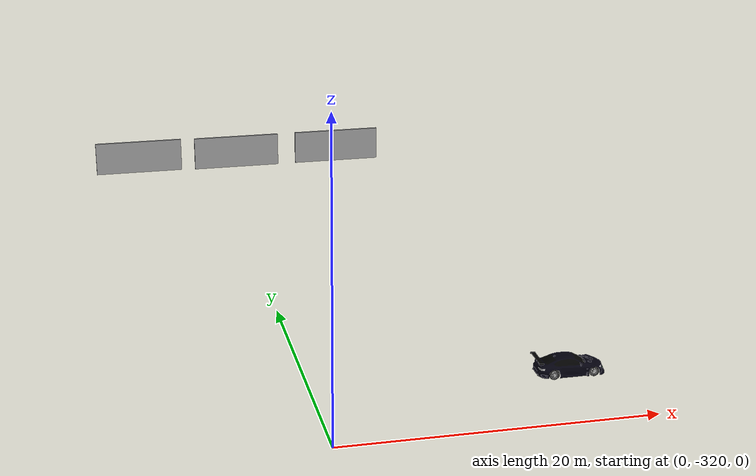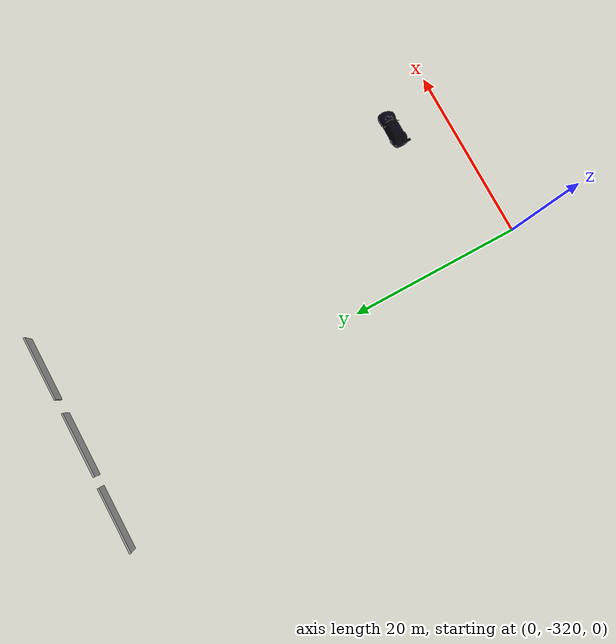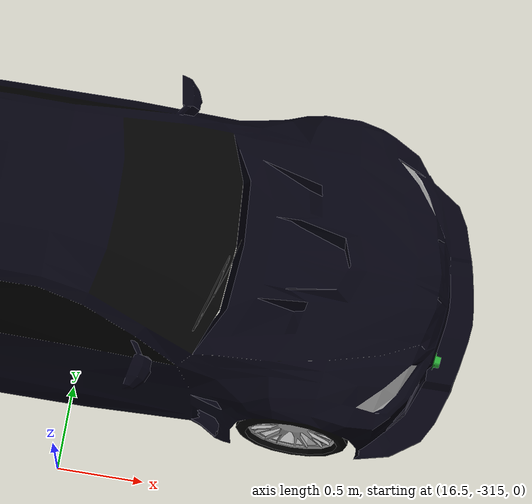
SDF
<sdf version="1.6">
 <world name="default">
  <model name="grey_wall_1">
   <static>1</static>
   <link name="link">
    <pose>0 0 1.4 0 -0 0</pose>
    <collision name="collision"><geometry><box><size>7.5 0.2 2.8</size></box></geometry></collision>
    <visual name="visual">
     <cast_shadows>0</cast_shadows>
     <geometry><box><size>7.5 0.2 2.8</size></box></geometry>
     <material>
      <script>
       <uri>model://grey_wall/materials/scripts</uri>
       <uri>model://grey_wall/materials/textures</uri>
       <name>vrc/grey_wall</name>
      </script>
     </material>
    </visual>
   </link>
   <pose>-6.96815 -267.034 0 0 -0 0</pose>
  </model>
  <model name="grey_wall_2">
   <static>1</static>
   <link name="link">
    <pose>0 0 1.4 0 -0 0</pose>
    <collision name="collision"><geometry><box><size>7.5 0.2 2.8</size></box></geometry></collision>
    <visual name="visual">
     <cast_shadows>0</cast_shadows>
     <geometry><box><size>7.5 0.2 2.8</size></box></geometry>
     <material>
      <script>
       <uri>model://grey_wall/materials/scripts</uri>
       <uri>model://grey_wall/materials/textures</uri>
       <name>vrc/grey_wall</name>
      </script>
     </material>
    </visual>
   </link>
   <pose>1.72789 -267.196 0 0 -0 0</pose>
  </model>
  <model name="grey_wall_3">
   <static>1</static>
   <link name="link">
    <pose>0 0 1.4 0 -0 0</pose>
    <collision name="collision"><geometry><box><size>7.5 0.2 2.8</size></box></geometry></collision>
    <visual name="visual">
     <cast_shadows>0</cast_shadows>
     <geometry><box><size>7.5 0.2 2.8</size></box></geometry>
     <material>
      <script>
       <uri>model://grey_wall/materials/scripts</uri>
       <uri>model://grey_wall/materials/textures</uri>
       <name>vrc/grey_wall</name>
      </script>
     </material>
    </visual>
   </link>
   <pose>10.8288 -267.164 0 0 -0 0</pose>
  </model>
  <model name="car4">
   <static>1</static>
   <link name="link_0">
    <inertial>
     <mass>1326</mass>
     <pose>0 0 0.5 0 -0 0</pose>
     <inertia><ixx>2581.13</ixx><ixy>0</ixy><iyy>591.308</iyy><ixz>0</ixz><iyz>0</iyz><izz>2681.95</izz></inertia>
    </inertial>
    <pose>0.162769 1.05541 -0.174965 0 -0 0</pose>
    <visual name="visual">
     <geometry><mesh><uri>model://car4/meshes/car4.dae</uri><scale>1 1 1</scale></mesh></geometry>
    </visual>
    <collision name="collision">
     <geometry><mesh><uri>model://car4/meshes/car4.dae</uri><scale>1 1 1</scale></mesh></geometry>
     <surface>
      <friction>
       <ode><mu>1</mu><mu2>1</mu2><fdir1>0 0 0</fdir1><slip1>0</slip1><slip2>0</slip2></ode>
       <torsional>
        <coefficient>1</coefficient>
        <patch_radius>0</patch_radius>
        <surface_radius>0</surface_radius>
        <use_patch_radius>1</use_patch_radius>
        <ode><slip>0</slip></ode>
       </torsional>
      </friction>
      <bounce><restitution_coefficient>0</restitution_coefficient><threshold>1e+06</threshold></bounce>
      <contact>
       <collide_without_contact>0</collide_without_contact>
       <collide_without_contact_bitmask>1</collide_without_contact_bitmask>
       <collide_bitmask>1</collide_bitmask>
       <ode>
        <soft_cfm>0</soft_cfm>
        <soft_erp>0.2</soft_erp>
        <kp>1e+13</kp>
        <kd>1</kd>
        <max_vel>0.01</max_vel>
        <min_depth>0</min_depth>
       </ode>
       <bullet>
        <split_impulse>1</split_impulse>
        <split_impulse_penetration_threshold>-0.01</split_impulse_penetration_threshold>
        <soft_cfm>0</soft_cfm>
        <soft_erp>0.2</soft_erp>
        <kp>1e+13</kp>
        <kd>1</kd>
       </bullet>
      </contact>
     </surface>
    </collision>
   </link>
   <model name="charge_oncar">
    <static>1</static>
    <link name="link_2">
     <inertial>
      <mass>0.3</mass>
      <inertia><ixx>0</ixx><ixy>0</ixy><ixz>0</ixz><iyy>0</iyy><iyz>0</iyz><izz>0</izz></inertia>
     </inertial>
     <visual name="visual">
      <pose>-0.04 -0.04 0 0 -0 0</pose>
      <geometry><mesh><uri>model://charge_oncar/meshes/charge_oncar.dae</uri><scale>1 1 1</scale></mesh></geometry>
      <material>
       <lighting>1</lighting>
       <script><uri>file://media/materials/scripts/gazebo.material</uri><name>Gazebo/Green</name></script>
       <emissive>0 0 0 1</emissive>
      </material>
     </visual>
     <collision name="collision">
      <pose>-0.04 -0.04 0 0 -0 0</pose>
      <geometry><mesh><uri>model://charge_oncar/meshes/charge_oncar.dae</uri><scale>1 1 1</scale></mesh></geometry>
      <surface>
       <friction>
        <ode><mu>1</mu><mu2>1</mu2><fdir1>0 0 0</fdir1><slip1>0</slip1><slip2>0</slip2></ode>
        <torsional>
         <coefficient>1</coefficient>
         <patch_radius>0</patch_radius>
         <surface_radius>0</surface_radius>
         <use_patch_radius>1</use_patch_radius>
         <ode><slip>0</slip></ode>
        </torsional>
       </friction>
       <bounce><restitution_coefficient>0</restitution_coefficient><threshold>1e+06</threshold></bounce>
       <contact>
        <collide_without_contact>0</collide_without_contact>
        <collide_without_contact_bitmask>1</collide_without_contact_bitmask>
        <collide_bitmask>1</collide_bitmask>
        <ode>
         <soft_cfm>0</soft_cfm>
         <soft_erp>0.2</soft_erp>
         <kp>1e+13</kp>
         <kd>1</kd>
         <max_vel>0.01</max_vel>
         <min_depth>0</min_depth>
        </ode>
        <bullet>
         <split_impulse>1</split_impulse>
         <split_impulse_penetration_threshold>-0.01</split_impulse_penetration_threshold>
         <soft_cfm>0</soft_cfm>
         <soft_erp>0.2</soft_erp>
         <kp>1e+13</kp>
         <kd>1</kd>
        </bullet>
       </contact>
      </surface>
     </collision>
    </link>
    <static>0</static>
    <pose>-0.162769 -1.05541 0.174965 1.67588 0.007645 -0.072359</pose>
   </model>
   <joint name="link_0_JOINT_0" type="fixed">
    <parent>link_0</parent>
    <child>charge_oncar::link_2</child>
    <physics>
     <ode><limit><cfm>0</cfm><erp>0.2</erp></limit><suspension><cfm>0</cfm><erp>0.2</erp></suspension></ode>
    </physics>
   </joint>
   <static>0</static>
   <pose>17.5 -314 0.360913 0.001767 0 1.5708</pose>
  </model>
 </world>
</sdf>
